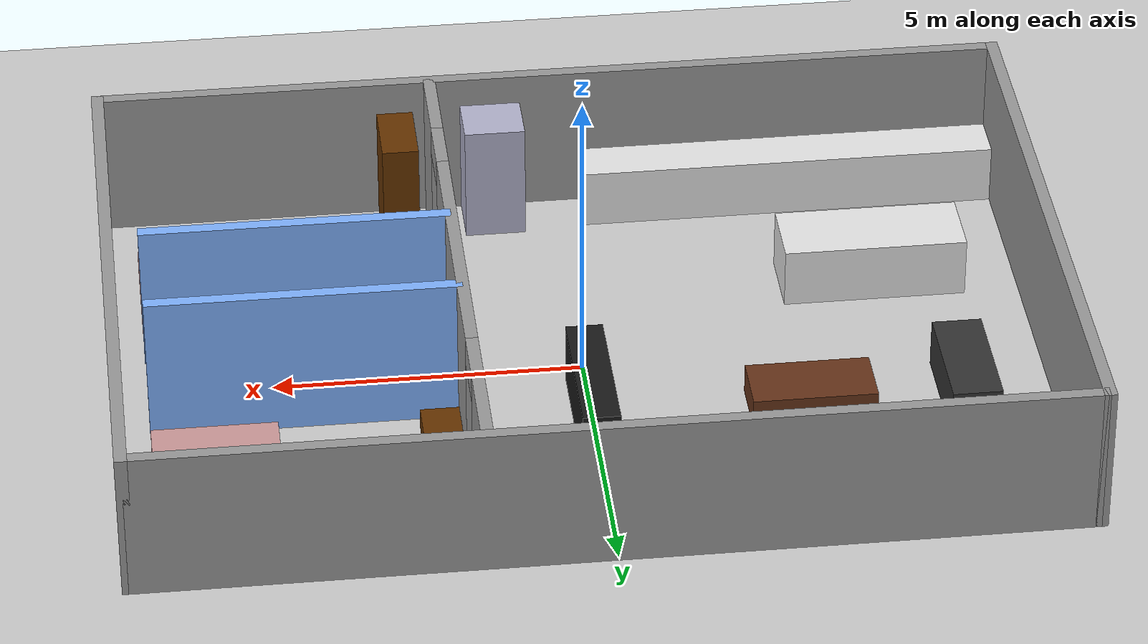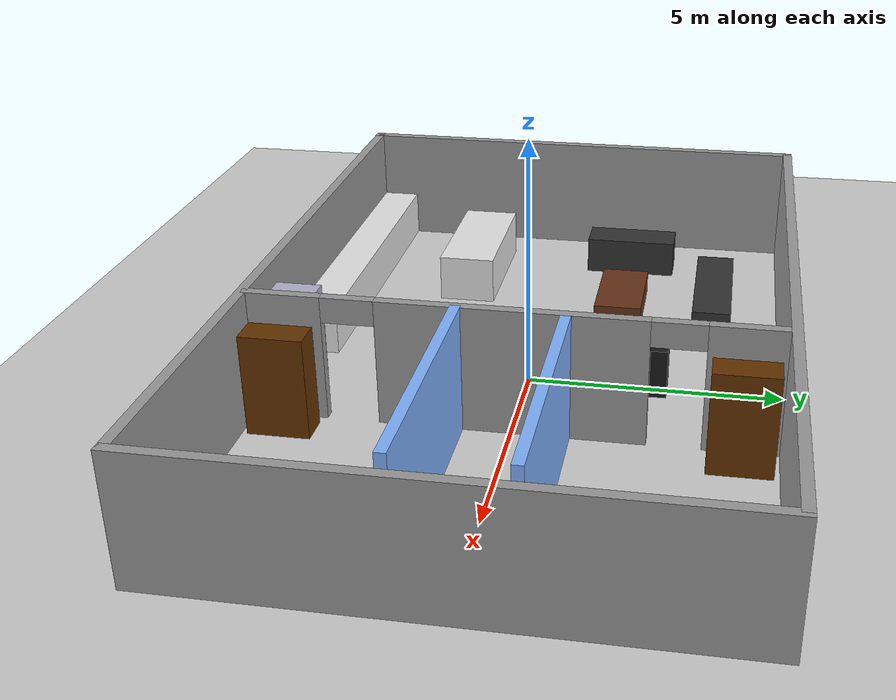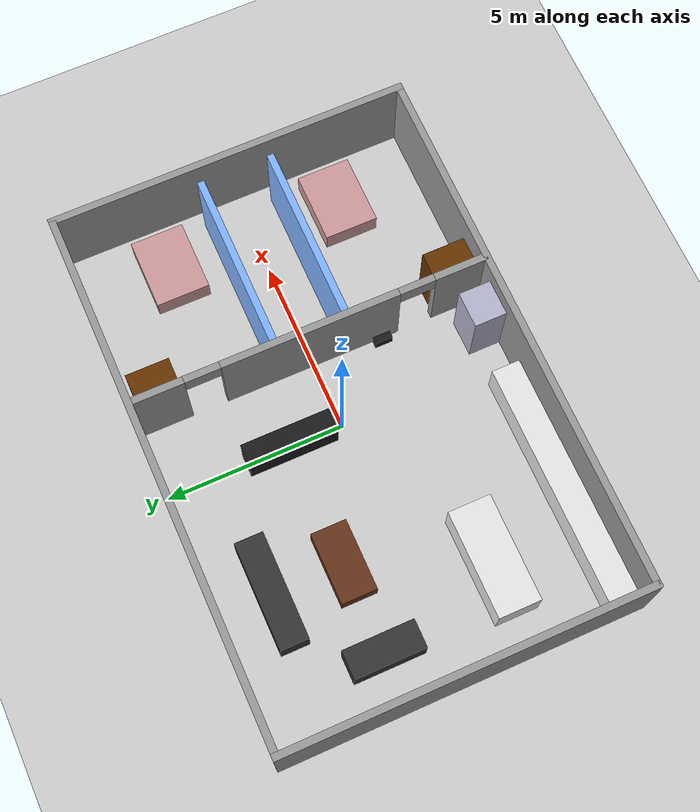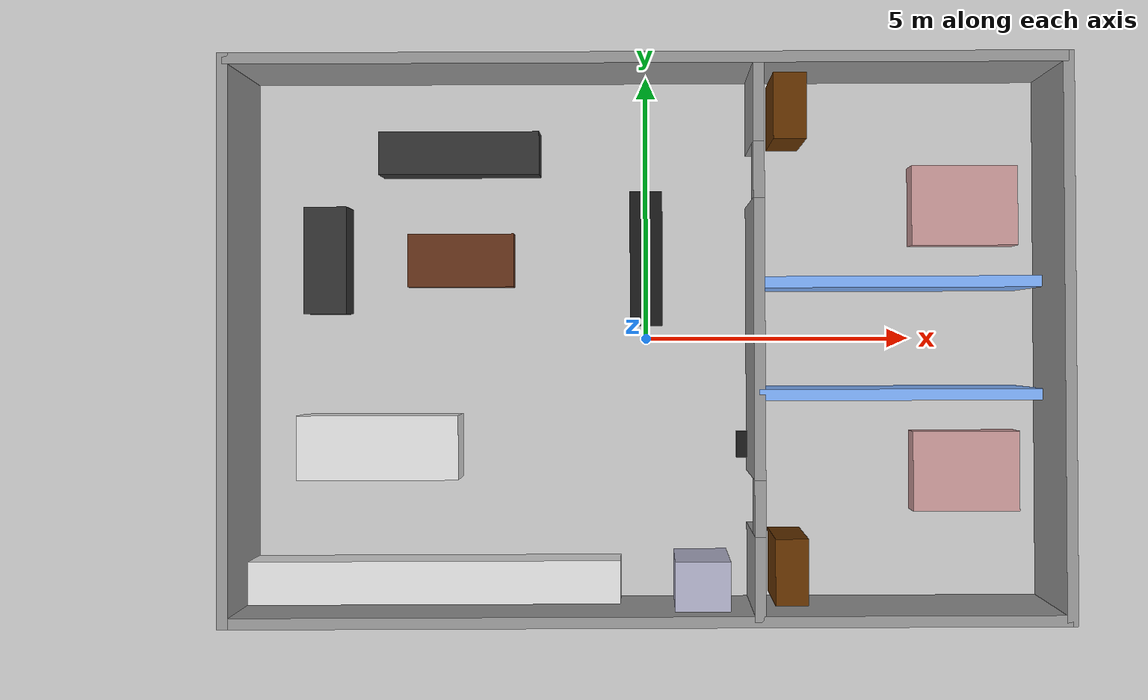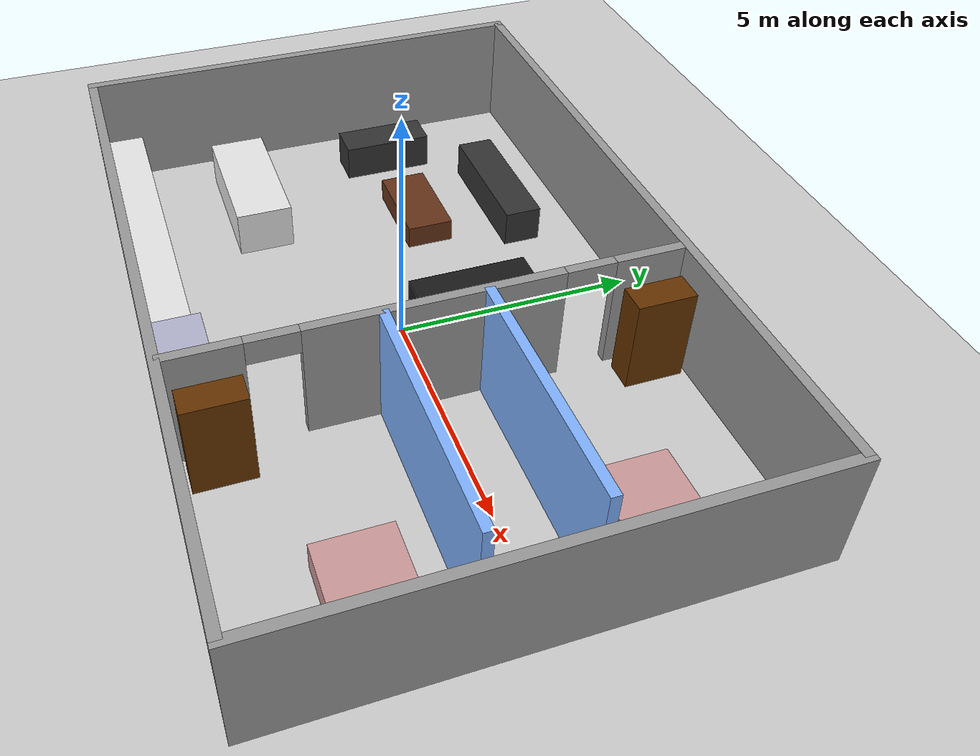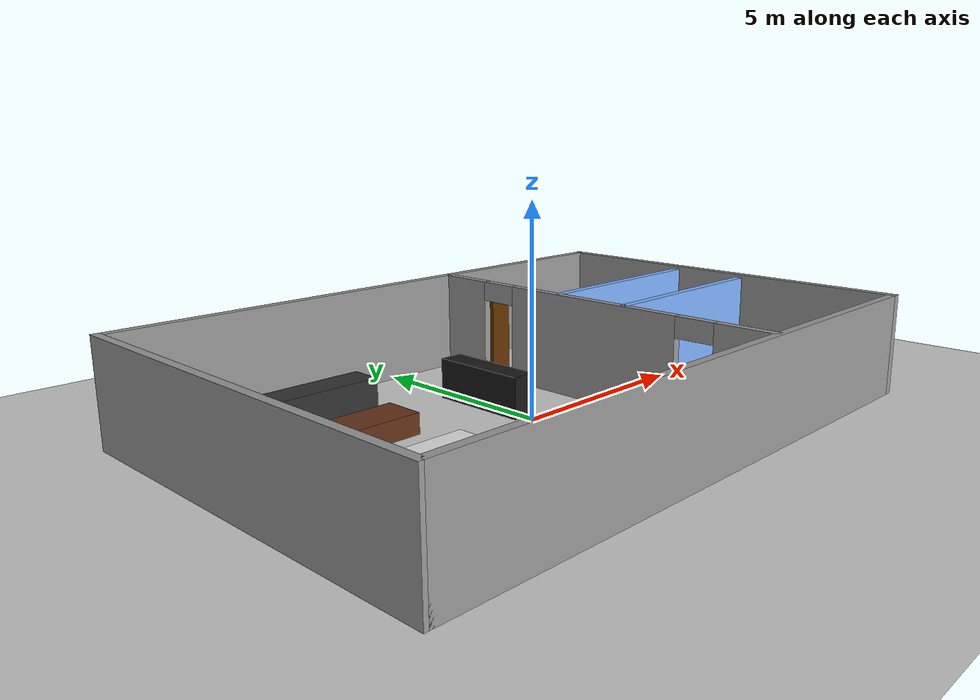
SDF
<?xml version="1.0" ?>
<sdf version="1.8">
  <world name="home_cleaner_world">

    <!-- FİZİK VE IŞIK -->
    <physics name="1ms" type="ignored">
      <max_step_size>0.001</max_step_size>
      <real_time_factor>1.0</real_time_factor>
    </physics>
    <plugin filename="gz-sim-physics-system" name="gz::sim::systems::Physics"></plugin>
    <plugin filename="gz-sim-user-commands-system" name="gz::sim::systems::UserCommands"></plugin>
    <plugin filename="gz-sim-scene-broadcaster-system" name="gz::sim::systems::SceneBroadcaster"></plugin>

    <light type="directional" name="sun">
      <cast_shadows>true</cast_shadows>
      <pose>0 0 10 0 0 0</pose>
      <diffuse>0.8 0.8 0.8 1</diffuse>
      <specular>0.2 0.2 0.2 1</specular>
      <direction>-0.5 0.1 -0.9</direction>
    </light>

    <model name="ground_plane">
      <static>true</static>
      <link name="link">
        <collision name="collision"><geometry><plane><normal>0 0 1</normal><size>100 100</size></plane></geometry></collision>
        <visual name="visual"><geometry><plane><normal>0 0 1</normal><size>100 100</size></plane></geometry>
          <material><ambient>0.8 0.8 0.8 1</ambient><diffuse>0.8 0.8 0.8 1</diffuse></material>
        </visual>
      </link>
    </model>

    <!-- EV MODELİ  -->
    <model name="custom_home_layout">
      <static>true</static>
      <pose>0 0 0 0 0 0</pose>

      <link name="structure">

        <!-- DUVARLAR (WALLS) -->

        <!-- 1. Ana Dış Çerçeve  -->
        <!-- Kuzey Duvarı (Üst) -->
        <visual name="wall_north_vis">
          <pose>0 5 1.25 0 0 0</pose>
          <geometry><box><size>15 0.2 2.5</size></box></geometry>
          <material><ambient>0.6 0.6 0.6 1</ambient><diffuse>0.6 0.6 0.6 1</diffuse></material>
        </visual>
        <collision name="wall_north"><pose>0 5 1.25 0 0 0</pose><geometry><box><size>15 0.2 2.5</size></box></geometry></collision>

        <!-- Güney Duvarı (Alt) -->
        <visual name="wall_south_vis">
          <pose>0 -5 1.25 0 0 0</pose>
          <geometry><box><size>15 0.2 2.5</size></box></geometry>
          <material><ambient>0.6 0.6 0.6 1</ambient><diffuse>0.6 0.6 0.6 1</diffuse></material>
        </visual>
        <collision name="wall_south"><pose>0 -5 1.25 0 0 0</pose><geometry><box><size>15 0.2 2.5</size></box></geometry></collision>

        <!-- Batı Duvarı (Sol - Salon Tarafı) -->
        <visual name="wall_west_vis">
          <pose>-7.5 0 1.25 0 0 0</pose>
          <geometry><box><size>0.2 10.2 2.5</size></box></geometry>
          <material><ambient>0.6 0.6 0.6 1</ambient><diffuse>0.6 0.6 0.6 1</diffuse></material>
        </visual>
        <collision name="wall_west"><pose>-7.5 0 1.25 0 0 0</pose><geometry><box><size>0.2 10.2 2.5</size></box></geometry></collision>

        <!-- Doğu Duvarı (Sağ - Odalar Tarafı) -->
        <visual name="wall_east_vis">
          <pose>7.5 0 1.25 0 0 0</pose>
          <geometry><box><size>0.2 10.2 2.5</size></box></geometry>
          <material><ambient>0.6 0.6 0.6 1</ambient><diffuse>0.6 0.6 0.6 1</diffuse></material>
        </visual>
        <collision name="wall_east"><pose>7.5 0 1.25 0 0 0</pose><geometry><box><size>0.2 10.2 2.5</size></box></geometry></collision>

        <!-- 2. İÇ DÖŞEME (KAPILI DİKEY DUVAR) -->

        <!-- A. En Üst Parça (Oda 1'in üst köşesi) -->
        <visual name="wall_vert_top_vis">
          <pose>2 4.25 1.25 0 0 0</pose> <!-- Y=4.25 merkezli -->
          <geometry><box><size>0.2 1.5 2.5</size></box></geometry>
          <material><ambient>0.6 0.6 0.6 1</ambient><diffuse>0.6 0.6 0.6 1</diffuse></material>
        </visual>
        <collision name="wall_vert_top"><pose>2 4.25 1.25 0 0 0</pose><geometry><box><size>0.2 1.5 2.5</size></box></geometry></collision>

        <!-- KAPI BOŞLUĞU 1 BURADA (Y=3.5 ile Y=2.5 arası boş) -->

        <!-- B. Orta Parça (İki kapı arasındaki duvar) -->
        <visual name="wall_vert_mid_vis">
          <pose>2 0 1.25 0 0 0</pose> <!-- Tam merkez -->
          <geometry><box><size>0.2 5 2.5</size></box></geometry> <!-- 5 metre uzunluğunda -->
          <material><ambient>0.6 0.6 0.6 1</ambient><diffuse>0.6 0.6 0.6 1</diffuse></material>
        </visual>
        <collision name="wall_vert_mid"><pose>2 0 1.25 0 0 0</pose><geometry><box><size>0.2 5 2.5</size></box></geometry></collision>

        <!-- KAPI BOŞLUĞU 2 BURADA (Y=-2.5 ile Y=-3.5 arası boş) -->

        <!-- C. En Alt Parça (Oda 2'nin alt köşesi) -->
        <visual name="wall_vert_bot_vis">
          <pose>2 -4.25 1.25 0 0 0</pose>
          <geometry><box><size>0.2 1.5 2.5</size></box></geometry>
          <material><ambient>0.6 0.6 0.6 1</ambient><diffuse>0.6 0.6 0.6 1</diffuse></material>
        </visual>
        <collision name="wall_vert_bot"><pose>2 -4.25 1.25 0 0 0</pose><geometry><box><size>0.2 1.5 2.5</size></box></geometry></collision>

        <!-- KAPILARIN ÜSTÜNDEKİ KİRİŞLER (Görüntü bütünlüğü için) -->
        <visual name="door_header_1_vis">
           <pose>2 3 2.25 0 0 0</pose> <geometry><box><size>0.2 1 0.5</size></box></geometry>
           <material><ambient>0.6 0.6 0.6 1</ambient><diffuse>0.6 0.6 0.6 1</diffuse></material>
        </visual>
        <visual name="door_header_2_vis">
           <pose>2 -3 2.25 0 0 0</pose> <geometry><box><size>0.2 1 0.5</size></box></geometry>
           <material><ambient>0.6 0.6 0.6 1</ambient><diffuse>0.6 0.6 0.6 1</diffuse></material>
        </visual>

        <!-- 3. Odaların Yatay Bölmeleri -->

        <!-- Oda 1 ile Oda 2 Arası -->
        <visual name="wall_room1_2_vis">
          <pose>4.5 1 1.25 0 0 0</pose>
          <geometry><box><size>5 0.2 2.5</size></box></geometry>
          <material><ambient>0.5 0.7 1.0 1</ambient><diffuse>0.5 0.7 1.0 1</diffuse></material> <!-- Mavi Alan Duvarı -->
        </visual>
        <collision name="wall_room1_2"><pose>4.5 2 1.25 0 0 0</pose><geometry><box><size>5 0.2 2.5</size></box></geometry></collision>

        <!-- Oda 2 ile Banyo Arası -->
        <visual name="wall_room2_bath_vis">
          <pose>4.5 -1 1.25 0 0 0</pose>
          <geometry><box><size>5 0.2 2.5</size></box></geometry>
          <material><ambient>0.5 0.7 1.0 1</ambient><diffuse>0.5 0.7 1.0 1</diffuse></material>
        </visual>
        <collision name="wall_room2_bath"><pose>4.5 -2 1.25 0 0 0</pose><geometry><box><size>5 0.2 2.5</size></box></geometry></collision>

        <!-- MOBİLYALAR -->

        <!-- 1. SALON (Sol Taraf) -->

        <!-- ŞARJ İSTASYONU (DOCKING STATION) -->
        <visual name="dock_station_vis">
          <pose>1.8 -2 0.15 0 0 0</pose> <!-- Duvara yanaştırma -->
          <geometry>
            <box><size>0.2 0.5 0.3</size></box> <!-- Küçük bir kutu -->
          </geometry>
          <material>
            <ambient>0.1 0.1 0.1 1</ambient> <!-- Siyah/Antrasit -->
            <diffuse>0.1 0.1 0.1 1</diffuse>
          </material>
        </visual>
        <collision name="dock_station_col">
          <pose>1.8 -2 0.15 0 0 0</pose>
          <geometry>
            <box><size>0.2 0.5 0.3</size></box>
          </geometry>
        </collision>

        <!-- Ana Büyük Koltuk (Üst Duvar Tarafı) -->
        <visual name="sofa_main_vis">
          <pose>-3.5 3.5 0.4 0 0 0</pose>
          <geometry><box><size>3 0.8 0.8</size></box></geometry>
          <material><ambient>0.2 0.2 0.2 1</ambient><diffuse>0.2 0.2 0.2 1</diffuse></material>
        </visual>
        <collision name="sofa_main"><pose>-3.5 3.5 0.4 0 0 0</pose><geometry><box><size>3 0.8 0.8</size></box></geometry></collision>

        <!-- Yan Koltuk (Sol Duvar Tarafı) -->
        <visual name="sofa_side_vis">
          <pose>-6 1.5 0.4 0 0 0</pose>
          <geometry><box><size>0.8 2 0.8</size></box></geometry>
          <material><ambient>0.2 0.2 0.2 1</ambient><diffuse>0.2 0.2 0.2 1</diffuse></material>
        </visual>
        <collision name="sofa_side"><pose>-6 1.5 0.4 0 0 0</pose><geometry><box><size>0.8 2 0.8</size></box></geometry></collision>

        <!-- Orta Sehpa (Küçük) -->
        <visual name="coffee_table_vis">
          <pose>-3.5 1.5 0.3 0 0 0</pose>
          <geometry><box><size>2 1 0.5</size></box></geometry>
          <material><ambient>0.4 0.2 0.1 1</ambient><diffuse>0.4 0.2 0.1 1</diffuse></material>
        </visual>
        <collision name="coffee_table"><pose>-3.5 1.5 0.3 0 0 0</pose><geometry><box><size>1 1 0.5</size></box></geometry></collision>

        <!-- TV Ünitesi (Dikey Duvara Yaslı) -->
        <visual name="tv_unit_vis">
          <pose>0 1.5 0.5 0 0 0</pose>
          <geometry><box><size>0.6 2.5 1</size></box></geometry>
          <material><ambient>0.1 0.1 0.1 1</ambient><diffuse>0.1 0.1 0.1 1</diffuse></material>
        </visual>
        <collision name="tv_unit"><pose>0 1.5 0.5 0 0 0</pose><geometry><box><size>0.6 2.5 1</size></box></geometry></collision>

        <!-- 2. MUTFAK (Sol Alt) -->

        <!-- Ada Mutfak (Ortada) -->
        <visual name="island_vis">
          <pose>-5 -2 0.5 0 0 0</pose>
          <geometry><box><size>3 1.2 1</size></box></geometry>
          <material><ambient>0.9 0.9 0.9 1</ambient><diffuse>0.9 0.9 0.9 1</diffuse></material>
        </visual>
        <collision name="island"><pose>-5 -2 0.5 0 0 0</pose><geometry><box><size>3 1.2 1</size></box></geometry></collision>

        <!-- Arka Tezgah (Alt Duvar) -->
        <visual name="counter_back_vis">
          <pose>-4 -4.5 0.5 0 0 0</pose>
          <geometry><box><size>7 0.8 1</size></box></geometry>
          <material><ambient>0.9 0.9 0.9 1</ambient><diffuse>0.9 0.9 0.9 1</diffuse></material>
        </visual>
        <collision name="counter_back"><pose>-4 -4.5 0.5 0 0 0</pose><geometry><box><size>5 0.8 1</size></box></geometry></collision>

        <!-- Buzdolabı (Sağ Alt Köşe) -->
        <visual name="fridge_vis">
          <pose>1 -4.5 1 0 0 0</pose>
          <geometry><box><size>1 1 2</size></box></geometry>
          <material><ambient>0.7 0.7 0.8 1</ambient><diffuse>0.7 0.7 0.8 1</diffuse></material>
        </visual>
        <collision name="fridge"><pose>1 -4.5 1 0 0 0</pose><geometry><box><size>1 1 2</size></box></geometry></collision>

        <!-- 3. ODALAR (Sağ Taraf) -->

        <!-- ODA 1 (Üst) -->
        <!-- Yatak -->
        <visual name="bed_1_vis">
          <pose>6 2.5 0.3 0 0 0</pose>
          <geometry><box><size>2 1.5 0.6</size></box></geometry>
          <material><ambient>0.8 0.6 0.6 1</ambient><diffuse>0.8 0.6 0.6 1</diffuse></material>
        </visual>
        <collision name="bed_1"><pose>6 2.5 0.3 0 0 0</pose><geometry><box><size>2 1.5 0.6</size></box></geometry></collision>

        <!-- Dolap (Kapının arkasında kalacak şekilde yukarı itildi) -->
        <visual name="wardrobe_1_vis">
          <pose>2.6 4.2 1 0 0 0</pose>
          <geometry><box><size>0.6 1.2 2</size></box></geometry>
          <material><ambient>0.4 0.2 0 1</ambient><diffuse>0.4 0.2 0 1</diffuse></material>
        </visual>
        <collision name="wardrobe_1"><pose>2.6 4.2 1 0 0 0</pose><geometry><box><size>0.6 1.2 2</size></box></geometry></collision>

        <!-- ODA 2 (Orta/Alt) -->
        <!-- Yatak -->
        <visual name="bed_2_vis">
          <pose>6 -2.5 0.3 0 0 0</pose>
          <geometry><box><size>2 1.5 0.6</size></box></geometry>
          <material><ambient>0.8 0.6 0.6 1</ambient><diffuse>0.8 0.6 0.6 1</diffuse></material>
        </visual>
        <collision name="bed_2"><pose>6 -2.5 0.3 0 0 0</pose><geometry><box><size>2 1.5 0.6</size></box></geometry></collision>

        <!-- Dolap (Kapının altına itildi) -->
        <visual name="wardrobe_2_vis">
          <pose>2.6 -4.2 1 0 0 0</pose>
          <geometry><box><size>0.6 1.2 2</size></box></geometry>
          <material><ambient>0.4 0.2 0 1</ambient><diffuse>0.4 0.2 0 1</diffuse></material>
        </visual>
        <collision name="wardrobe_2"><pose>2.6 -4.2 1 0 0 0</pose><geometry><box><size>0.6 1.2 2</size></box></geometry></collision>

      </link>
    </model>
  </world>
</sdf>
